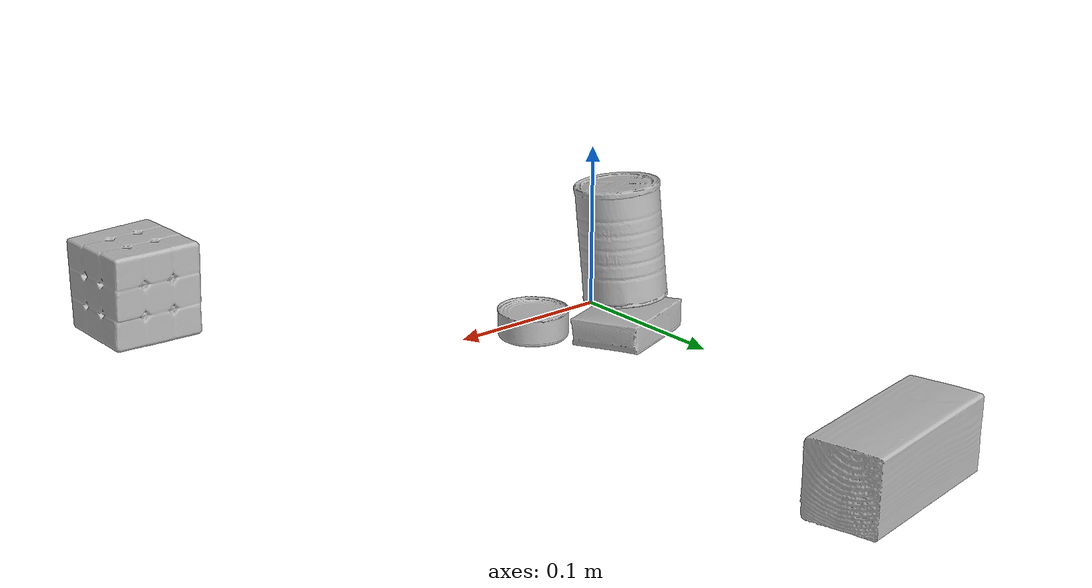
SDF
<sdf version="1.4">
  <world name="default">
    <light name="light1" type="point">
      <pose>0 0 1 0 0 0</pose>
      <diffuse>3 3 3 1</diffuse>
      <specular>3 3 3 1</specular>
    </light>
    <light name="light2" type="point">
      <pose>0 0.5 2 0 0 0</pose>
      <diffuse>1 1 1 1</diffuse>
      <specular>1 1 1 1</specular>
    </light>
    <light name="light3" type="point">
      <pose>0 0.5 2 0 0 0</pose>
      <diffuse>3 3 3 1</diffuse>
      <specular>3 3 3 1</specular>
    </light>
    <scene>
      <ambient>0.7 0.7 0.7</ambient>
    </scene>
    <model name="box1">
      <link name="link_box1">
        <collision name="default">
          <geometry>
            <mesh>
              <uri>model://rubiks_cube/collision_meshes/collision.obj</uri>
              <scale>1.0 1.0 1.0</scale>
            </mesh>
          </geometry>
          <surface>
            <friction>
              <ode>
                <mu>0.5</mu>
                <mu2>0.5</mu2>
              </ode>
            </friction>
          <contact>
        <ode>
            <max_vel>0</max_vel>
            <min_depth>0.0001</min_depth>
            <kp>1e8</kp>
        </ode>
    </contact></surface>
        </collision>
        <visual name="default">
          <geometry>
            <mesh>
              <uri>model://rubiks_cube/visual_meshes/visual.dae</uri>
              <scale>1.0 1.0 1.0</scale>
            </mesh>
          </geometry>
        </visual>
        <inertial>
          <mass>0.19534927606582642</mass>
          <pose>2.6721041649580002e-05 5.256967051536776e-05 -7.264316082000732e-06 -0.05467254413799041 -0.09813991388320625 -0.034457004790174134</pose>
          <inertia>
            <ixx>0.0001079436</ixx>
            <iyy>0.00010744019</iyy>
            <izz>0.000108838074</izz>
            <ixy>0</ixy>
            <ixz>0</ixz>
            <iyz>0</iyz>
          </inertia>
        </inertial>
      </link>
      <pose>0.24022579193115234 -0.13573704659938812 0.028679000213742256 -1.7051724863413976e-06 4.6628583252488466e-07 -1.5666996963677575</pose>
    </model>
    <model name="box2">
      <link name="link_box2">
        <collision name="default">
          <geometry>
            <mesh>
              <uri>model://pudding_box/collision_meshes/collision.obj</uri>
              <scale>0.5 0.5 0.5</scale>
            </mesh>
          </geometry>
          <surface>
            <friction>
              <ode>
                <mu>0.5</mu>
                <mu2>0.5</mu2>
              </ode>
            </friction>
          <contact>
        <ode>
            <max_vel>0</max_vel>
            <min_depth>0.0001</min_depth>
            <kp>1e8</kp>
        </ode>
    </contact></surface>
        </collision>
        <visual name="default">
          <geometry>
            <mesh>
              <uri>model://pudding_box/visual_meshes/visual.dae</uri>
              <scale>0.5 0.5 0.5</scale>
            </mesh>
          </geometry>
        </visual>
        <inertial>
          <mass>0.04727919027209282</mass>
          <pose>0.00024474109522998333 0.00040339428232982755 -0.0002594413817860186 0.0052131013240192415 -0.0066037977924420415 0.020079828889419827</pose>
          <inertia>
            <ixx>1.3361672e-05</ixx>
            <iyy>8.9898285e-06</iyy>
            <izz>1.9732002e-05</izz>
            <ixy>0</ixy>
            <ixz>0</ixz>
            <iyz>0</iyz>
          </inertia>
        </inertial>
      </link>
      <pose>0.0232520904392004 0.058605968952178955 0.010391086339950562 0.005805803542267314 -0.057230845712647915 1.8841332235703252</pose>
    </model>
    <model name="box3">
      <link name="link_box3">
        <collision name="default">
          <geometry>
            <mesh>
              <uri>model://wood_block/collision_meshes/collision.obj</uri>
              <scale>0.5 0.5 0.5</scale>
            </mesh>
          </geometry>
          <surface>
            <friction>
              <ode>
                <mu>0.5</mu>
                <mu2>0.5</mu2>
              </ode>
            </friction>
          <contact>
        <ode>
            <max_vel>0</max_vel>
            <min_depth>0.0001</min_depth>
            <kp>1e8</kp>
        </ode>
    </contact></surface>
        </collision>
        <visual name="default">
          <geometry>
            <mesh>
              <uri>model://wood_block/visual_meshes/visual.dae</uri>
              <scale>0.5 0.5 0.5</scale>
            </mesh>
          </geometry>
        </visual>
        <inertial>
          <mass>0.3041442632675171</mass>
          <pose>-2.9066577553749084e-06 -0.000285404734313488 0.00013204291462898254 -0.05220823380361383 -0.0051926957206686235 -0.0068613778665259926</pose>
          <inertia>
            <ixx>0.00010174775</ixx>
            <iyy>0.0003214212</iyy>
            <izz>0.0003202189</izz>
            <ixy>0</ixy>
            <ixz>0</ixz>
            <iyz>0</iyz>
          </inertia>
        </inertial>
      </link>
      <pose>0.06694351881742477 0.30430886149406433 0.022629262879490852 -0.0052085126855742426 0.005718715136837357 0.22018891738312388</pose>
    </model>
    <model name="can1">
      <link name="link_can1">
        <collision name="default">
          <geometry>
            <mesh>
              <uri>model://master_chef_can/collision_meshes/collision.obj</uri>
              <scale>0.5 0.5 0.5</scale>
            </mesh>
          </geometry>
          <surface>
            <friction>
              <ode>
                <mu>0.5</mu>
                <mu2>0.5</mu2>
              </ode>
            </friction>
          <contact>
        <ode>
            <max_vel>0</max_vel>
            <min_depth>0.0001</min_depth>
            <kp>1e8</kp>
        </ode>
    </contact></surface>
        </collision>
        <visual name="default">
          <geometry>
            <mesh>
              <uri>model://master_chef_can/visual_meshes/visual.dae</uri>
              <scale>0.5 0.5 0.5</scale>
            </mesh>
          </geometry>
        </visual>
        <inertial>
          <mass>0.18719419836997986</mass>
          <pose>-4.661963976104744e-05 1.3926856468060578e-07 -5.0798327720258385e-05 -0.0017995099067415357 0.0006479319374111454 -0.6102582770449616</pose>
          <inertia>
            <ixx>0.0001098703</ixx>
            <iyy>0.00010906167</iyy>
            <izz>6.071174e-05</izz>
            <ixy>0</ixy>
            <ixz>0</ixz>
            <iyz>0</iyz>
          </inertia>
        </inertial>
      </link>
      <pose>0.01172199472784996 0.03936104103922844 0.054093241691589355 -0.07005518765766489 -0.07953154613312957 2.6574711266318727</pose>
    </model>
    <model name="can2">
      <link name="link_can2">
        <collision name="default">
          <geometry>
            <mesh>
              <uri>model://tuna_fish_can/collision_meshes/collision.obj</uri>
              <scale>0.5 0.5 0.5</scale>
            </mesh>
          </geometry>
          <surface>
            <friction>
              <ode>
                <mu>0.5</mu>
                <mu2>0.5</mu2>
              </ode>
            </friction>
          <contact>
        <ode>
            <max_vel>0</max_vel>
            <min_depth>0.0001</min_depth>
            <kp>1e8</kp>
        </ode>
    </contact></surface>
        </collision>
        <visual name="default">
          <geometry>
            <mesh>
              <uri>model://tuna_fish_can/visual_meshes/visual.dae</uri>
              <scale>0.5 0.5 0.5</scale>
            </mesh>
          </geometry>
        </visual>
        <inertial>
          <mass>0.011327341198921204</mass>
          <pose>-2.0361354472697712e-05 -7.256336175487377e-06 -0.0005269023822620511 -0.001794480782384504 0.00017159763230480823 0.24052991368062646</pose>
          <inertia>
            <ixx>1.5314733e-06</ixx>
            <iyy>1.52509e-06</iyy>
            <izz>2.6205691e-06</izz>
            <ixy>0</ixy>
            <ixz>0</ixz>
            <iyz>0</iyz>
          </inertia>
        </inertial>
      </link>
      <pose>0.06272902339696884 0.019575387239456177 0.00851999782025814 1.0093190323174392e-08 2.0942716549493877e-08 -0.7705670474675191</pose>
    </model>
  <physics type="ode">
      <max_contacts>50</max_contacts>
      <ode>
        <solver>
          <type>quick</type>
          <iters>75</iters>
        </solver>
        <constraints>
          <contact_max_correcting_vel>0</contact_max_correcting_vel>
          <contact_surface_layer>0</contact_surface_layer>
        </constraints>
      </ode>
    </physics></world>
</sdf>
